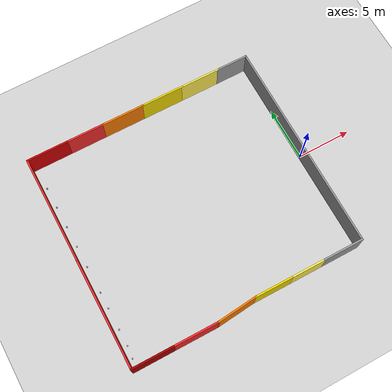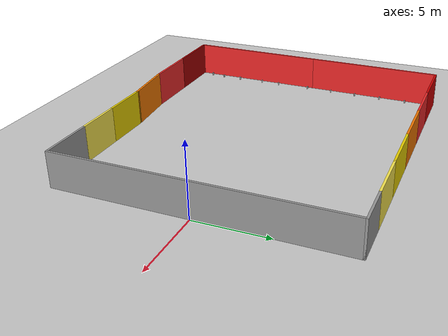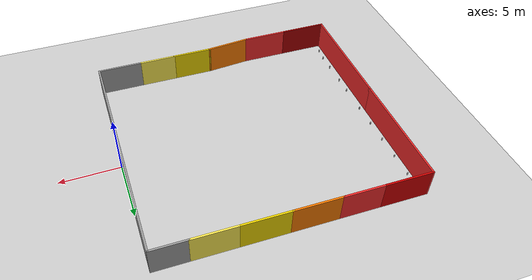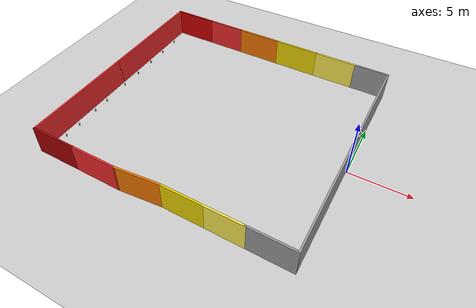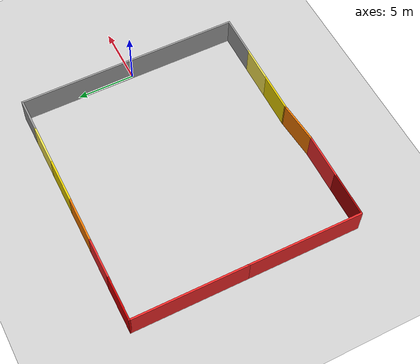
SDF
<sdf version="1.6">
 <world name="default">
  <light name="sun" type="directional">
   <pose>0 0 10 0 -0 0</pose>
   <diffuse>0.8 0.8 0.8 1</diffuse>
   <specular>0.2 0.2 0.2 1</specular>
   <attenuation>
    <range>1000</range>
    <constant>0.9</constant>
    <linear>0.01</linear>
    <quadratic>0.001</quadratic>
   </attenuation>
   <direction>-0.5 0.1 -0.9</direction>
  </light>
  <model name="ground_plane">
   <static>1</static>
   <link name="link">
    <collision name="collision">
     <geometry><plane><normal>0 0 1</normal><size>100 100</size></plane></geometry>
     <surface>
      <contact><collide_bitmask>65535</collide_bitmask></contact>
      <friction><ode><mu>100</mu><mu2>50</mu2></ode></friction>
     </surface>
    </collision>
    <visual name="visual">
     <cast_shadows>0</cast_shadows>
     <geometry><plane><normal>0 0 1</normal><size>100 100</size></plane></geometry>
     <material>
      <script><uri>file://media/materials/scripts/gazebo.material</uri><name>Gazebo/Grey</name></script>
     </material>
    </visual>
   </link>
  </model>
  <gravity>0 0 -9.8</gravity>
  <magnetic_field>6e-06 2.3e-05 -4.2e-05</magnetic_field>
  <atmosphere type="adiabatic"/>
  <physics name="default_physics" default="0" type="ode">
   <max_step_size>0.001</max_step_size>
   <real_time_factor>1</real_time_factor>
   <real_time_update_rate>1000</real_time_update_rate>
  </physics>
  <scene><ambient>0.4 0.4 0.4 1</ambient><background>0.7 0.7 0.7 1</background><shadows>1</shadows></scene>
  <audio><device>default</device></audio>
  <spherical_coordinates>
   <surface_model>EARTH_WGS84</surface_model>
   <latitude_deg>0</latitude_deg>
   <longitude_deg>0</longitude_deg>
   <elevation>0</elevation>
   <heading_deg>0</heading_deg>
  </spherical_coordinates>
  <model name="Gradient">
   <pose>-10.7798 0.166937 0 0 0 -1.57801</pose>
   <link name="Wall_0">
    <collision name="Wall_0_Collision">
     <geometry><box><size>10 0.15 2.5</size></box></geometry>
     <pose>0 0 1.25 0 -0 0</pose>
    </collision>
    <visual name="Wall_0_Visual">
     <pose>0 0 1.25 0 -0 0</pose>
     <geometry><box><size>10 0.15 2.5</size></box></geometry>
     <material>
      <script><uri>file://media/materials/scripts/gazebo.material</uri><name>Gazebo/Grey</name></script>
      <ambient>0.937255 0.160784 0.160784 1</ambient>
     </material>
     <meta><layer>0</layer></meta>
    </visual>
    <pose>-4.92845 -10.675 0 0 -0 0</pose>
   </link>
   <link name="Wall_1">
    <collision name="Wall_1_Collision">
     <geometry><box><size>10 0.15 2.5</size></box></geometry>
     <pose>0 0 1.25 0 -0 0</pose>
    </collision>
    <visual name="Wall_1_Visual">
     <pose>0 0 1.25 0 -0 0</pose>
     <geometry><box><size>10 0.15 2.5</size></box></geometry>
     <material>
      <script><uri>file://media/materials/scripts/gazebo.material</uri><name>Gazebo/Grey</name></script>
      <ambient>0.937255 0.160784 0.160784 1</ambient>
     </material>
     <meta><layer>0</layer></meta>
    </visual>
    <pose>4.92155 -10.675 0 0 -0 0</pose>
   </link>
   <link name="Wall_2">
    <collision name="Wall_2_Collision">
     <geometry><box><size>4 0.15 2.5</size></box></geometry>
     <pose>0 0 1.25 0 -0 0</pose>
    </collision>
    <visual name="Wall_2_Visual">
     <pose>0 0 1.25 0 -0 0</pose>
     <geometry><box><size>4 0.15 2.5</size></box></geometry>
     <material>
      <script><uri>file://media/materials/scripts/gazebo.material</uri><name>Gazebo/Grey</name></script>
      <ambient>0.643137 0 0 1</ambient>
     </material>
     <meta><layer>0</layer></meta>
    </visual>
    <pose>9.84655 -8.75 0 0 -0 1.5708</pose>
   </link>
   <link name="Wall_25">
    <collision name="Wall_25_Collision">
     <geometry><box><size>4 0.15 2.5</size></box></geometry>
     <pose>0 0 1.25 0 -0 0</pose>
    </collision>
    <visual name="Wall_25_Visual">
     <pose>0 0 1.25 0 -0 0</pose>
     <geometry><box><size>4 0.15 2.5</size></box></geometry>
     <material>
      <script><uri>file://media/materials/scripts/gazebo.material</uri><name>Gazebo/Grey</name></script>
      <ambient>0.8 0 0 1</ambient>
     </material>
     <meta><layer>0</layer></meta>
    </visual>
    <pose>-9.85345 -8.75 0 0 -0 1.5708</pose>
   </link>
   <link name="Wall_26">
    <collision name="Wall_26_Collision">
     <geometry><box><size>3.5 0.15 2.5</size></box></geometry>
     <pose>0 0 1.25 0 -0 0</pose>
    </collision>
    <visual name="Wall_26_Visual">
     <pose>0 0 1.25 0 -0 0</pose>
     <geometry><box><size>3.5 0.15 2.5</size></box></geometry>
     <material>
      <script><uri>file://media/materials/scripts/gazebo.material</uri><name>Gazebo/Grey</name></script>
      <ambient>0.937255 0.160784 0.160784 1</ambient>
     </material>
     <meta><layer>0</layer></meta>
    </visual>
    <pose>-9.85345 -5.15 0 0 -0 1.5708</pose>
   </link>
   <link name="Wall_27">
    <collision name="Wall_27_Collision">
     <geometry><box><size>4 0.15 2.5</size></box></geometry>
     <pose>0 0 1.25 0 -0 0</pose>
    </collision>
    <visual name="Wall_27_Visual">
     <pose>0 0 1.25 0 -0 0</pose>
     <geometry><box><size>4 0.15 2.5</size></box></geometry>
     <material>
      <script><uri>file://media/materials/scripts/gazebo.material</uri><name>Gazebo/Grey</name></script>
      <ambient>0.960784 0.47451 0 1</ambient>
     </material>
     <meta><layer>0</layer></meta>
    </visual>
    <pose>-9.85345 -1.55 0 0 -0 1.5708</pose>
   </link>
   <link name="Wall_28">
    <collision name="Wall_28_Collision">
     <geometry><box><size>4 0.15 2.5</size></box></geometry>
     <pose>0 0 1.25 0 -0 0</pose>
    </collision>
    <visual name="Wall_28_Visual">
     <pose>0 0 1.25 0 -0 0</pose>
     <geometry><box><size>4 0.15 2.5</size></box></geometry>
     <material>
      <script><uri>file://media/materials/scripts/gazebo.material</uri><name>Gazebo/Grey</name></script>
      <ambient>0.929412 0.831373 0 1</ambient>
     </material>
     <meta><layer>0</layer></meta>
    </visual>
    <pose>-9.85345 2.3 0 0 -0 1.5708</pose>
   </link>
   <link name="Wall_29">
    <collision name="Wall_29_Collision">
     <geometry><box><size>3.75 0.15 2.5</size></box></geometry>
     <pose>0 0 1.25 0 -0 0</pose>
    </collision>
    <visual name="Wall_29_Visual">
     <pose>0 0 1.25 0 -0 0</pose>
     <geometry><box><size>3.75 0.15 2.5</size></box></geometry>
     <material>
      <script><uri>file://media/materials/scripts/gazebo.material</uri><name>Gazebo/Grey</name></script>
      <ambient>0.988235 0.913725 0.309804 1</ambient>
     </material>
     <meta><layer>0</layer></meta>
    </visual>
    <pose>-9.85345 6.025 0 0 -0 1.5708</pose>
   </link>
   <link name="Wall_3">
    <collision name="Wall_3_Collision">
     <geometry><box><size>4 0.15 2.5</size></box></geometry>
     <pose>0 0 1.25 0 -0 0</pose>
    </collision>
    <visual name="Wall_3_Visual">
     <pose>0 0 1.25 0 -0 0</pose>
     <geometry><box><size>4 0.15 2.5</size></box></geometry>
     <material>
      <script><uri>file://media/materials/scripts/gazebo.material</uri><name>Gazebo/Grey</name></script>
      <ambient>0.937255 0.160784 0.160784 1</ambient>
     </material>
     <meta><layer>0</layer></meta>
    </visual>
    <pose>9.84655 -4.9 0 0 -0 1.5708</pose>
   </link>
   <link name="Wall_30">
    <collision name="Wall_30_Collision">
     <geometry><box><size>3 0.15 2.5</size></box></geometry>
     <pose>0 0 1.25 0 -0 0</pose>
    </collision>
    <visual name="Wall_30_Visual">
     <pose>0 0 1.25 0 -0 0</pose>
     <geometry><box><size>3 0.15 2.5</size></box></geometry>
     <material>
      <script><uri>file://media/materials/scripts/gazebo.material</uri><name>Gazebo/Grey</name></script>
      <ambient>1 1 1 1</ambient>
     </material>
     <meta><layer>0</layer></meta>
    </visual>
    <pose>-9.85345 9.25 0 0 -0 1.5708</pose>
   </link>
   <link name="Wall_31">
    <collision name="Wall_31_Collision">
     <geometry><box><size>19.5 0.15 2.5</size></box></geometry>
     <pose>0 0 1.25 0 -0 0</pose>
    </collision>
    <visual name="Wall_31_Visual">
     <pose>0 0 1.25 0 -0 0</pose>
     <geometry><box><size>19.5 0.15 2.5</size></box></geometry>
     <material>
      <script><uri>file://media/materials/scripts/gazebo.material</uri><name>Gazebo/Grey</name></script>
      <ambient>1 1 1 1</ambient>
     </material>
     <meta><layer>0</layer></meta>
    </visual>
    <pose>-0.178452 10.675 0 0 -0 0</pose>
   </link>
   <link name="Wall_32">
    <collision name="Wall_32_Collision">
     <geometry><box><size>3.75 0.15 2.5</size></box></geometry>
     <pose>0 0 1.25 0 -0 0</pose>
    </collision>
    <visual name="Wall_32_Visual">
     <pose>0 0 1.25 0 -0 0</pose>
     <geometry><box><size>3.75 0.15 2.5</size></box></geometry>
     <material>
      <script><uri>file://media/materials/scripts/gazebo.material</uri><name>Gazebo/Grey</name></script>
      <ambient>1 1 1 1</ambient>
     </material>
     <meta><layer>0</layer></meta>
    </visual>
    <pose>9.49655 8.875 0 0 -0 -1.5708</pose>
   </link>
   <link name="Wall_33">
    <collision name="Wall_33_Collision">
     <geometry><box><size>3.25 0.15 2.5</size></box></geometry>
     <pose>0 0 1.25 0 -0 0</pose>
    </collision>
    <visual name="Wall_33_Visual">
     <pose>0 0 1.25 0 -0 0</pose>
     <geometry><box><size>3.25 0.15 2.5</size></box></geometry>
     <material>
      <script><uri>file://media/materials/scripts/gazebo.material</uri><name>Gazebo/Grey</name></script>
      <ambient>0.988235 0.913725 0.309804 1</ambient>
     </material>
     <meta><layer>0</layer></meta>
    </visual>
    <pose>9.49655 5.525 0 0 -0 -1.5708</pose>
   </link>
   <link name="Wall_34">
    <collision name="Wall_34_Collision">
     <geometry><box><size>3.5 0.15 2.5</size></box></geometry>
     <pose>0 0 1.25 0 -0 0</pose>
    </collision>
    <visual name="Wall_34_Visual">
     <pose>0 0 1.25 0 -0 0</pose>
     <geometry><box><size>3.5 0.15 2.5</size></box></geometry>
     <material>
      <script><uri>file://media/materials/scripts/gazebo.material</uri><name>Gazebo/Grey</name></script>
      <ambient>0.929412 0.831373 0 1</ambient>
     </material>
     <meta><layer>0</layer></meta>
    </visual>
    <pose>9.49655 2.3 0 0 -0 -1.5708</pose>
   </link>
   <link name="Wall_36">
    <collision name="Wall_36_Collision">
     <geometry><box><size>3.76697 0.15 2.5</size></box></geometry>
     <pose>0 0 1.25 0 -0 0</pose>
    </collision>
    <visual name="Wall_36_Visual">
     <pose>0 0 1.25 0 -0 0</pose>
     <geometry><box><size>3.76697 0.15 2.5</size></box></geometry>
     <material>
      <script><uri>file://media/materials/scripts/gazebo.material</uri><name>Gazebo/Grey</name></script>
      <ambient>0.960784 0.47451 0 1</ambient>
     </material>
     <meta><layer>0</layer></meta>
    </visual>
    <pose>9.67155 -1.175 0 0 -0 -1.47388</pose>
   </link>
   <static>1</static>
  </model>
  <light name="user_point_light_0" type="point">
   <pose>-21.9327 -7.26527 1 0 -0 0</pose>
   <diffuse>0.5 0.5 0.5 1</diffuse>
   <specular>0.1 0.1 0.1 1</specular>
   <attenuation>
    <range>20</range>
    <constant>0.5</constant>
    <linear>0.01</linear>
    <quadratic>0.001</quadratic>
   </attenuation>
   <cast_shadows>0</cast_shadows>
   <direction>0 0 -1</direction>
  </light>
  <light name="user_point_light_1" type="point">
   <pose>-22.2356 -2.42408 1 0 -0 0</pose>
   <diffuse>0.5 0.5 0.5 1</diffuse>
   <specular>0.1 0.1 0.1 1</specular>
   <attenuation>
    <range>20</range>
    <constant>0.5</constant>
    <linear>0.01</linear>
    <quadratic>0.001</quadratic>
   </attenuation>
   <cast_shadows>0</cast_shadows>
   <direction>0 0 -1</direction>
  </light>
  <light name="user_point_light_2" type="point">
   <pose>-22.3058 4.3686 1 0 -0 0</pose>
   <diffuse>0.5 0.5 0.5 1</diffuse>
   <specular>0.1 0.1 0.1 1</specular>
   <attenuation>
    <range>20</range>
    <constant>0.5</constant>
    <linear>0.01</linear>
    <quadratic>0.001</quadratic>
   </attenuation>
   <cast_shadows>0</cast_shadows>
   <direction>0 0 -1</direction>
  </light>
  <light name="user_point_light_3" type="point">
   <pose>-22.3134 8.26506 1 0 -0 0</pose>
   <diffuse>0.5 0.5 0.5 1</diffuse>
   <specular>0.1 0.1 0.1 1</specular>
   <attenuation>
    <range>20</range>
    <constant>0.5</constant>
    <linear>0.01</linear>
    <quadratic>0.001</quadratic>
   </attenuation>
   <cast_shadows>0</cast_shadows>
   <direction>0 0 -1</direction>
  </light>
  <model name="beer">
   <link name="link">
    <pose>0 0 0.115 0 -0 0</pose>
    <inertial>
     <mass>0.39</mass>
     <inertia><ixx>0.00058</ixx><ixy>0</ixy><ixz>0</ixz><iyy>0.00058</iyy><iyz>0</iyz><izz>0.00019</izz></inertia>
    </inertial>
    <collision name="collision">
     <geometry><cylinder><radius>0.055</radius><length>0.23</length></cylinder></geometry>
    </collision>
    <visual name="visual">
     <geometry><cylinder><radius>0.055</radius><length>0.23</length></cylinder></geometry>
     <material>
      <script>
       <uri>model://beer/materials/scripts</uri>
       <uri>model://beer/materials/textures</uri>
       <name>Beer/Diffuse</name>
      </script>
     </material>
    </visual>
   </link>
   <pose>-21.1085 -8.60268 0 0 -0 0</pose>
  </model>
  <model name="beer_clone">
   <link name="link">
    <pose>0 0 0.115 0 -0 0</pose>
    <inertial>
     <mass>0.39</mass>
     <inertia><ixx>0.00058</ixx><ixy>0</ixy><ixz>0</ixz><iyy>0.00058</iyy><iyz>0</iyz><izz>0.00019</izz></inertia>
    </inertial>
    <collision name="collision">
     <geometry><cylinder><radius>0.055</radius><length>0.23</length></cylinder></geometry>
    </collision>
    <visual name="visual">
     <geometry><cylinder><radius>0.055</radius><length>0.23</length></cylinder></geometry>
     <material>
      <script>
       <uri>model://beer/materials/scripts</uri>
       <uri>model://beer/materials/textures</uri>
       <name>Beer/Diffuse</name>
      </script>
     </material>
    </visual>
   </link>
   <pose>-21 -7.49383 0 0 -0 0</pose>
  </model>
  <model name="beer_clone_0">
   <link name="link">
    <pose>0 0 0.115 0 -0 0</pose>
    <inertial>
     <mass>0.39</mass>
     <inertia><ixx>0.00058</ixx><ixy>0</ixy><ixz>0</ixz><iyy>0.00058</iyy><iyz>0</iyz><izz>0.00019</izz></inertia>
    </inertial>
    <collision name="collision">
     <geometry><cylinder><radius>0.055</radius><length>0.23</length></cylinder></geometry>
    </collision>
    <visual name="visual">
     <geometry><cylinder><radius>0.055</radius><length>0.23</length></cylinder></geometry>
     <material>
      <script>
       <uri>model://beer/materials/scripts</uri>
       <uri>model://beer/materials/textures</uri>
       <name>Beer/Diffuse</name>
      </script>
     </material>
    </visual>
   </link>
   <pose>-21 -6 0 0 -0 0</pose>
  </model>
  <model name="beer_clone_1">
   <link name="link">
    <pose>0 0 0.115 0 -0 0</pose>
    <inertial>
     <mass>0.39</mass>
     <inertia><ixx>0.00058</ixx><ixy>0</ixy><ixz>0</ixz><iyy>0.00058</iyy><iyz>0</iyz><izz>0.00019</izz></inertia>
    </inertial>
    <collision name="collision">
     <geometry><cylinder><radius>0.055</radius><length>0.23</length></cylinder></geometry>
    </collision>
    <visual name="visual">
     <geometry><cylinder><radius>0.055</radius><length>0.23</length></cylinder></geometry>
     <material>
      <script>
       <uri>model://beer/materials/scripts</uri>
       <uri>model://beer/materials/textures</uri>
       <name>Beer/Diffuse</name>
      </script>
     </material>
    </visual>
   </link>
   <pose>-21 -4 0 0 -0 0</pose>
  </model>
  <model name="beer_clone_2">
   <link name="link">
    <pose>0 0 0.115 0 -0 0</pose>
    <inertial>
     <mass>0.39</mass>
     <inertia><ixx>0.00058</ixx><ixy>0</ixy><ixz>0</ixz><iyy>0.00058</iyy><iyz>0</iyz><izz>0.00019</izz></inertia>
    </inertial>
    <collision name="collision">
     <geometry><cylinder><radius>0.055</radius><length>0.23</length></cylinder></geometry>
    </collision>
    <visual name="visual">
     <geometry><cylinder><radius>0.055</radius><length>0.23</length></cylinder></geometry>
     <material>
      <script>
       <uri>model://beer/materials/scripts</uri>
       <uri>model://beer/materials/textures</uri>
       <name>Beer/Diffuse</name>
      </script>
     </material>
    </visual>
   </link>
   <pose>-21 -2.50879 0 0 -0 0</pose>
  </model>
  <model name="beer_clone_3">
   <link name="link">
    <pose>0 0 0.115 0 -0 0</pose>
    <inertial>
     <mass>0.39</mass>
     <inertia><ixx>0.00058</ixx><ixy>0</ixy><ixz>0</ixz><iyy>0.00058</iyy><iyz>0</iyz><izz>0.00019</izz></inertia>
    </inertial>
    <collision name="collision">
     <geometry><cylinder><radius>0.055</radius><length>0.23</length></cylinder></geometry>
    </collision>
    <visual name="visual">
     <geometry><cylinder><radius>0.055</radius><length>0.23</length></cylinder></geometry>
     <material>
      <script>
       <uri>model://beer/materials/scripts</uri>
       <uri>model://beer/materials/textures</uri>
       <name>Beer/Diffuse</name>
      </script>
     </material>
    </visual>
   </link>
   <pose>-21 0 0 0 -0 0</pose>
  </model>
  <model name="beer_clone_4">
   <link name="link">
    <pose>0 0 0.115 0 -0 0</pose>
    <inertial>
     <mass>0.39</mass>
     <inertia><ixx>0.00058</ixx><ixy>0</ixy><ixz>0</ixz><iyy>0.00058</iyy><iyz>0</iyz><izz>0.00019</izz></inertia>
    </inertial>
    <collision name="collision">
     <geometry><cylinder><radius>0.055</radius><length>0.23</length></cylinder></geometry>
    </collision>
    <visual name="visual">
     <geometry><cylinder><radius>0.055</radius><length>0.23</length></cylinder></geometry>
     <material>
      <script>
       <uri>model://beer/materials/scripts</uri>
       <uri>model://beer/materials/textures</uri>
       <name>Beer/Diffuse</name>
      </script>
     </material>
    </visual>
   </link>
   <pose>-21 2 0 0 -0 0</pose>
  </model>
  <model name="beer_clone_5">
   <link name="link">
    <pose>0 0 0.115 0 -0 0</pose>
    <inertial>
     <mass>0.39</mass>
     <inertia><ixx>0.00058</ixx><ixy>0</ixy><ixz>0</ixz><iyy>0.00058</iyy><iyz>0</iyz><izz>0.00019</izz></inertia>
    </inertial>
    <collision name="collision">
     <geometry><cylinder><radius>0.055</radius><length>0.23</length></cylinder></geometry>
    </collision>
    <visual name="visual">
     <geometry><cylinder><radius>0.055</radius><length>0.23</length></cylinder></geometry>
     <material>
      <script>
       <uri>model://beer/materials/scripts</uri>
       <uri>model://beer/materials/textures</uri>
       <name>Beer/Diffuse</name>
      </script>
     </material>
    </visual>
   </link>
   <pose>-21 4 0 0 -0 0</pose>
  </model>
  <model name="beer_clone_6">
   <link name="link">
    <pose>0 0 0.115 0 -0 0</pose>
    <inertial>
     <mass>0.39</mass>
     <inertia><ixx>0.00058</ixx><ixy>0</ixy><ixz>0</ixz><iyy>0.00058</iyy><iyz>0</iyz><izz>0.00019</izz></inertia>
    </inertial>
    <collision name="collision">
     <geometry><cylinder><radius>0.055</radius><length>0.23</length></cylinder></geometry>
    </collision>
    <visual name="visual">
     <geometry><cylinder><radius>0.055</radius><length>0.23</length></cylinder></geometry>
     <material>
      <script>
       <uri>model://beer/materials/scripts</uri>
       <uri>model://beer/materials/textures</uri>
       <name>Beer/Diffuse</name>
      </script>
     </material>
    </visual>
   </link>
   <pose>-21 6 0 0 -0 0</pose>
  </model>
  <model name="beer_clone_7">
   <link name="link">
    <pose>0 0 0.115 0 -0 0</pose>
    <inertial>
     <mass>0.39</mass>
     <inertia><ixx>0.00058</ixx><ixy>0</ixy><ixz>0</ixz><iyy>0.00058</iyy><iyz>0</iyz><izz>0.00019</izz></inertia>
    </inertial>
    <collision name="collision">
     <geometry><cylinder><radius>0.055</radius><length>0.23</length></cylinder></geometry>
    </collision>
    <visual name="visual">
     <geometry><cylinder><radius>0.055</radius><length>0.23</length></cylinder></geometry>
     <material>
      <script>
       <uri>model://beer/materials/scripts</uri>
       <uri>model://beer/materials/textures</uri>
       <name>Beer/Diffuse</name>
      </script>
     </material>
    </visual>
   </link>
   <pose>-21 8 0 0 -0 0</pose>
  </model>
 </world>
</sdf>
